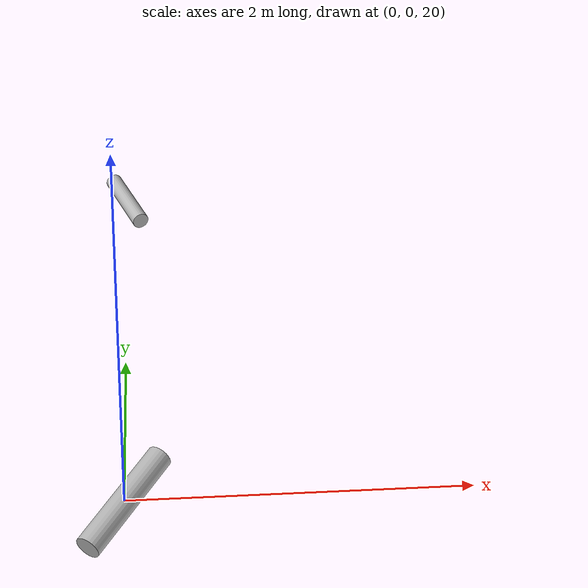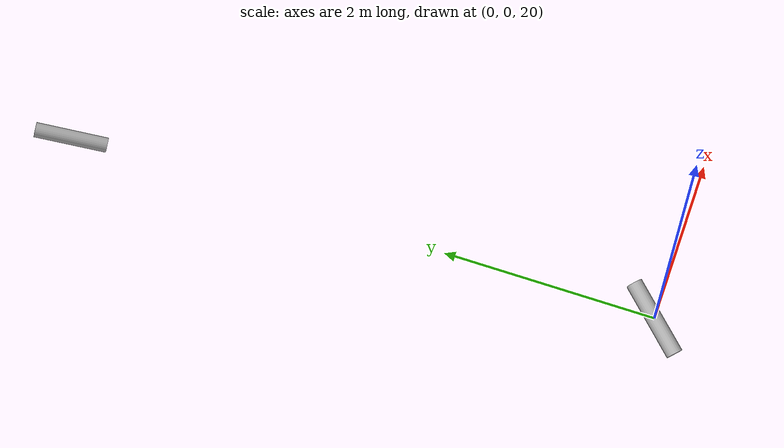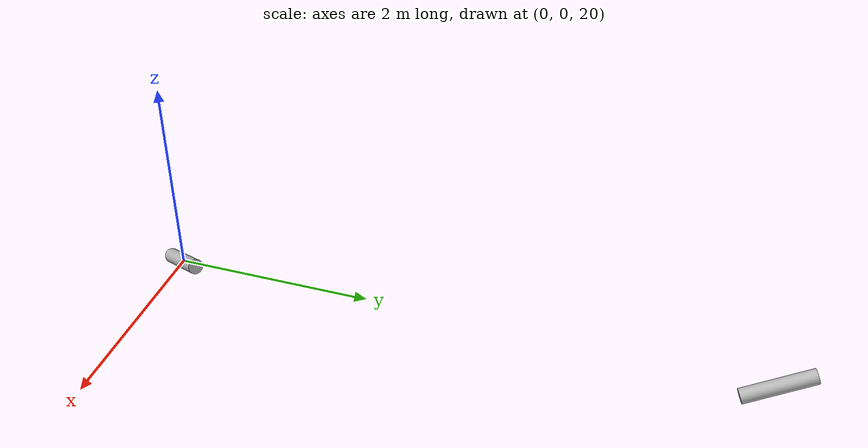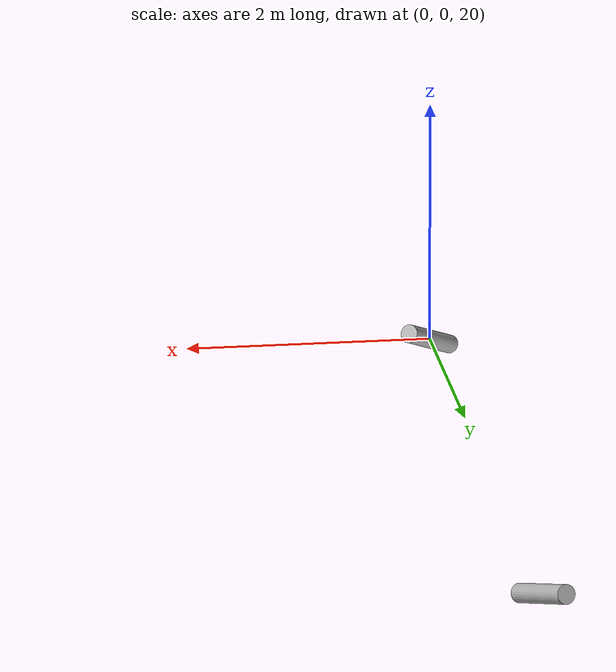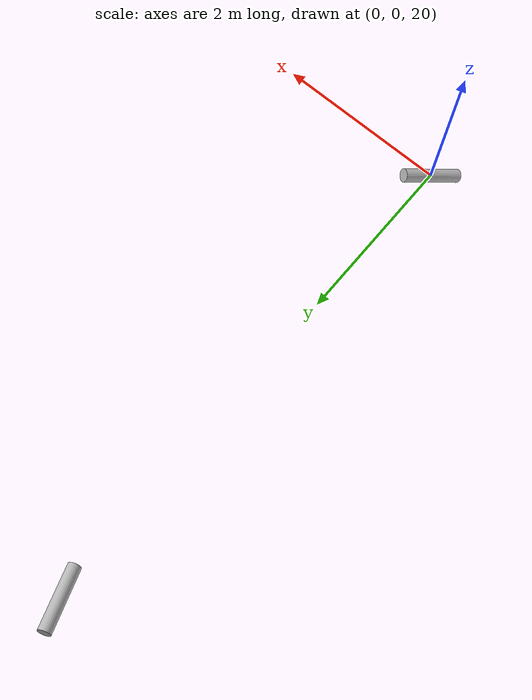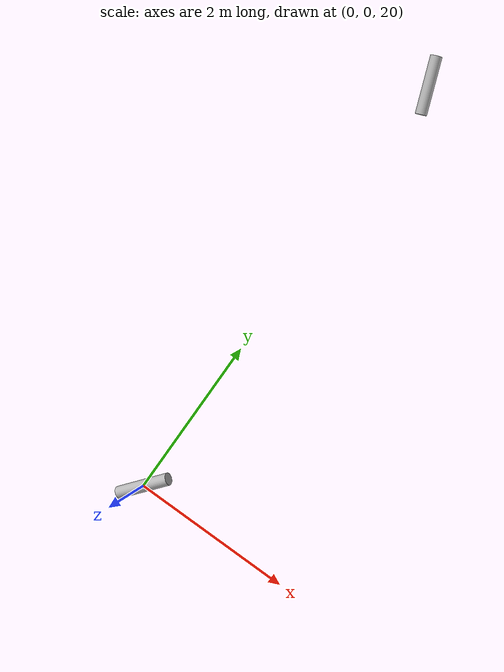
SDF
<?xml version="1.0" ?>
<!-- 자동 생성: gz_aero/tools/gen_gz_test_world.py — 직접 고치지 마세요 -->
<sdf version="1.9">
  <world name="aero_frame_check">
    <!-- 중력 0: 공력만 남긴다. 중력이 있으면 자세가 빨리 무너져 관측 구간이 짧다 -->
    <gravity>0 0 0</gravity>
    <physics name="1ms" type="ignored">
      <max_step_size>0.001</max_step_size>
      <real_time_factor>0</real_time_factor>
    </physics>
    <plugin filename="gz-sim-physics-system"
            name="gz::sim::systems::Physics"/>
    <plugin filename="gz-sim-user-commands-system"
            name="gz::sim::systems::UserCommands"/>
    <plugin filename="gz-sim-scene-broadcaster-system"
            name="gz::sim::systems::SceneBroadcaster"/>

    <model name="q0_com_offset">
      <pose>0 0 20 0.2 -0.4 0.9</pose>
      <link name="body">
        <inertial>
          <pose>0.05 0.02 -0.03 0 0 0</pose>
          <mass>1.660778087</mass>
          <inertia>
            <ixx>0.00604071</ixx><iyy>0.04045326</iyy><izz>0.04045326</izz>
            <ixy>0</ixy><ixz>0</ixz><iyz>0</iyz>
          </inertia>
        </inertial>
        <visual name="hull">
          <pose>0 0 0 0 1.5707963267948966 0</pose>
          <geometry><cylinder><radius>0.075</radius>
            <length>0.72</length></cylinder></geometry>
        </visual>
      </link>
      <plugin filename="FastDroneAero" name="fast_drone::AeroPlugin">
        <link_name>body</link_name>
        <csv_file>/Users/kj/Desktop/dynamic/fast_drone/gz_aero/data/aero_placeholder.csv</csv_file>
        <nose>1 0 0</nose>
        <right>0 -1 0</right>
        <wind>0 0 0</wind>
        <test_velocity_world>55 -12 6</test_velocity_world>
        <test_omega_world>0 0 0</test_omega_world>
        <debug_csv>/tmp/fast_drone_aero/q0_com_offset.csv</debug_csv>
        <debug_csv_every>1</debug_csv_every>
      </plugin>
    </model>

    <model name="q1_com_spin">
      <pose>0 6 20 -0.5 0.3 -1.2</pose>
      <link name="body">
        <inertial>
          <pose>-0.04 0.06 0.02 0 0 0</pose>
          <mass>1.660778087</mass>
          <inertia>
            <ixx>0.00604071</ixx><iyy>0.04045326</iyy><izz>0.04045326</izz>
            <ixy>0</ixy><ixz>0</ixz><iyz>0</iyz>
          </inertia>
        </inertial>
        <visual name="hull">
          <pose>0 0 0 0 1.5707963267948966 0</pose>
          <geometry><cylinder><radius>0.075</radius>
            <length>0.72</length></cylinder></geometry>
        </visual>
      </link>
      <plugin filename="FastDroneAero" name="fast_drone::AeroPlugin">
        <link_name>body</link_name>
        <csv_file>/Users/kj/Desktop/dynamic/fast_drone/gz_aero/data/aero_placeholder.csv</csv_file>
        <nose>1 0 0</nose>
        <right>0 -1 0</right>
        <wind>0 0 0</wind>
        <test_velocity_world>30 8 -20</test_velocity_world>
        <test_omega_world>1.5 -0.7 2.1</test_omega_world>
        <debug_csv>/tmp/fast_drone_aero/q1_com_spin.csv</debug_csv>
        <debug_csv_every>1</debug_csv_every>
      </plugin>
    </model>

  </world>
</sdf>
